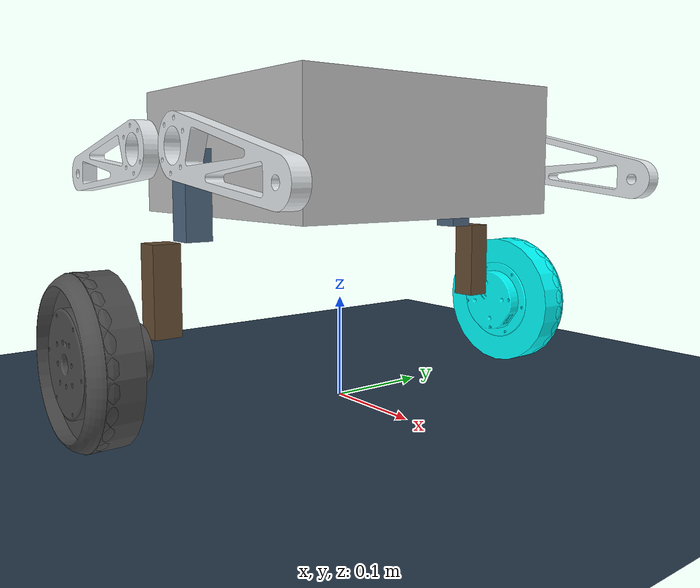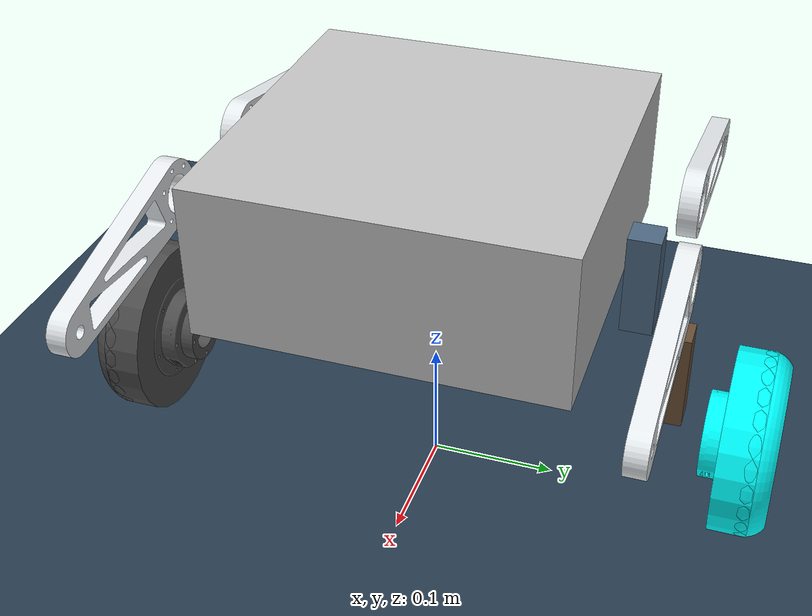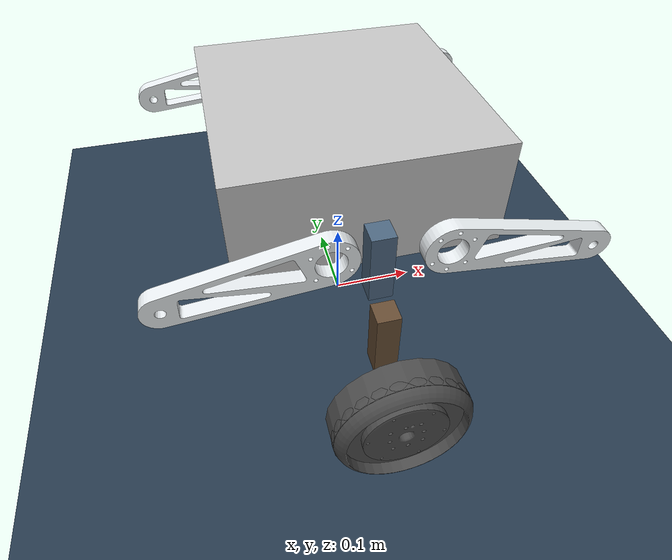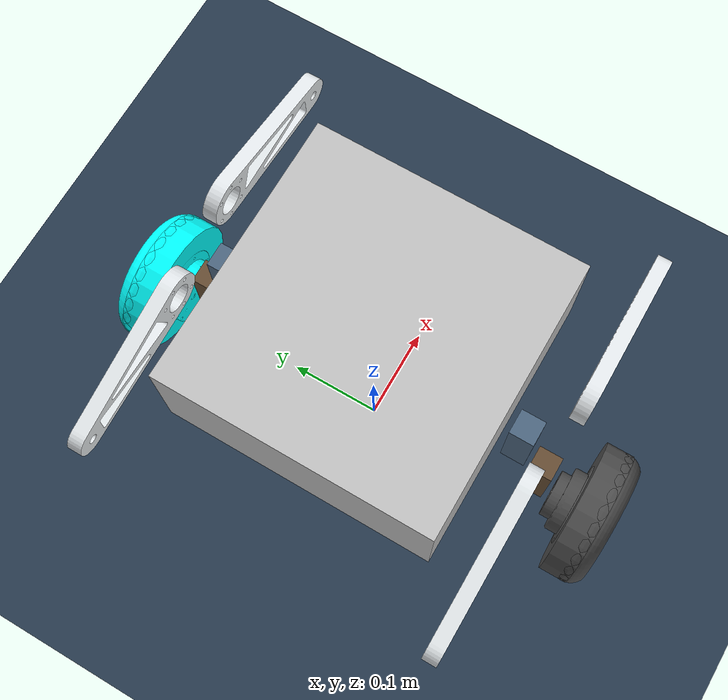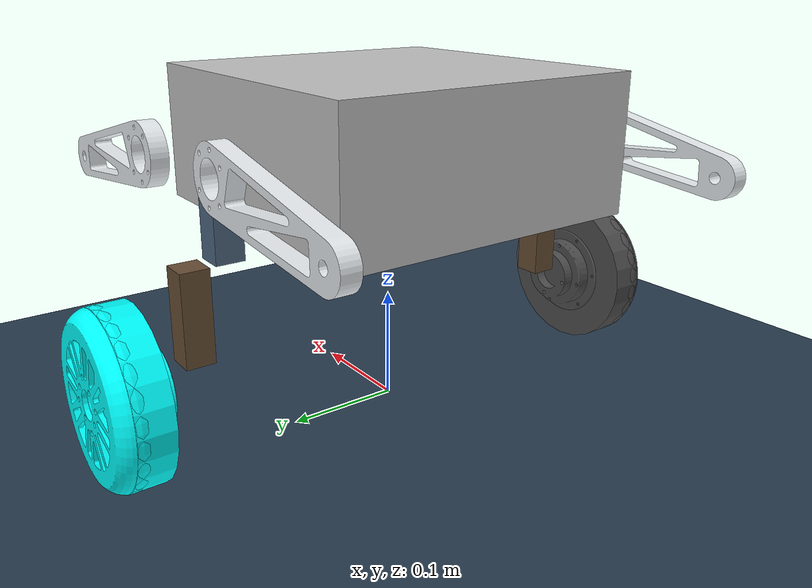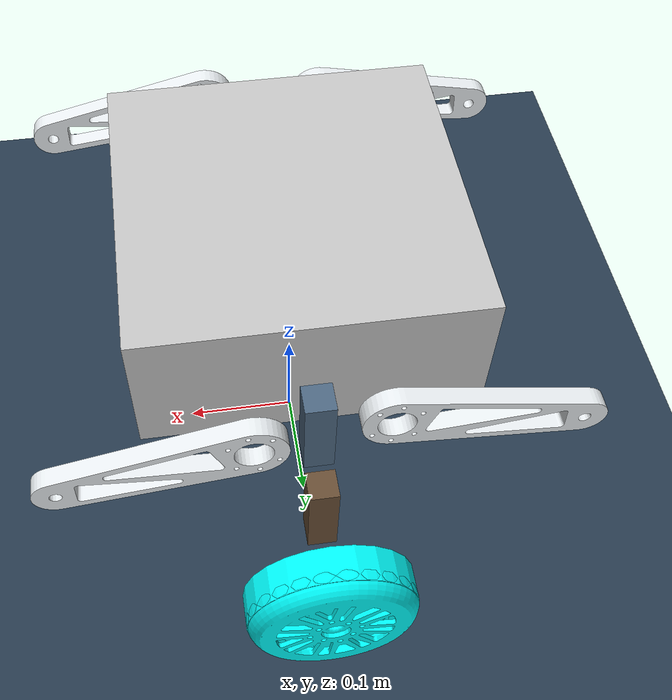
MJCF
<mujoco model="pi_12dof_release_v1">
	<compiler angle="radian" meshdir="../meshes/" eulerseq="zyx" />
	<option timestep="0.001" iterations="50" solver="PGS" gravity="0 0 -9.81">
	</option>
	<size njmax="500" nconmax="100" />
	<visual>
		<quality shadowsize="4096" />
		<map znear="0.05" />
	</visual>
	<default>
		<joint limited="true" />
		<motor ctrllimited="true" />
		<geom condim="4" contype="1" conaffinity="15" solref="0.001 2" friction="0.9 0.2 0.2" />
		<equality solref="0.001 2" />
		<default class="visualgeom">
			<geom material="visualgeom" condim="1" contype="0" conaffinity="0" />
		</default>
		<default class="visualgeom2">
			<geom material="visualgeom2" condim="1" contype="0" conaffinity="0" />
		</default>
		<default class="obstacle">
			<geom material="obstacle" condim="3" contype="1" conaffinity="15" />
		</default>
	</default>
	<asset>
		<texture type="skybox" builtin="gradient" rgb1="0.3 0.5 0.7" rgb2="0 0 0" width="512" height="512" />
		<texture name="texplane" type="2d" builtin="checker" rgb1=".2 .3 .4" rgb2=".1 0.15 0.2" width="512" height="512" mark="cross" markrgb=".8 .8 .8" />
		<texture name="texplane2" type="2d" builtin="checker" rgb1="1 0.3137 0.1843" rgb2="0.0 0.30196 0.38039" width="512" height="512" mark="cross" markrgb=".8 .8 .8" />
		<material name="matplane" reflectance="0." texture="texplane" texrepeat="1 1" texuniform="true" />
		<material name="matplane2" reflectance="0.1" texture="texplane2" texrepeat="1 1" texuniform="true" />
		<material name="obstacle" rgba="0.9 0.6 0.2 1" />
		<material name="visualgeom" rgba="0.5 0.9 0.2 1" />
		<material name="visualgeom2" rgba="0.5 0.9 0.2 1" />
		<mesh name="l_wheel_link" file="l_wheel_link.STL" />
		<mesh name="l_f_mt_link" file="l_f_mt_link.STL" />
		<mesh name="l_b_mt_link" file="l_b_mt_link.STL" />
		<mesh name="r_f_mt_link" file="r_f_mt_link.STL" />
		<mesh name="r_wheel_link" file="r_wheel_link.STL" />
		<mesh name="r_b_mt_link" file="r_b_mt_link.STL" />
		<hfield name="hf0" nrow="200" ncol="200" size="10 5 0.2 .1" />
	</asset>
	<worldbody>
		<light directional="true" diffuse=".4 .4 .4" specular="0.1 0.1 0.1" pos="0 0 5.0" dir="0 0 -1" castshadow="false" />
		<light directional="true" diffuse=".6 .6 .6" specular="0.2 0.2 0.2" pos="0 0 4" dir="0 0 -1" />
		<geom name="ground" type="plane" size="0 0 1" pos="0.001 0 0" quat="1 0 0 0" material="matplane" condim="1" conaffinity="15" />
		<body name="base_link" pos="0.0 0.0 0.245">
			<inertial pos="0.00242324 -5.699e-05 0.0403008" quat="0.695312 0.00968645 0.00943283 0.718581" mass="2.1609" diaginertia="0.00978249 0.00901239 0.00416199" />
			<geom size="0.14 0.14 0.06" type="box" contype="0" conaffinity="0" group="1" density="0" rgba="0.75294 0.75294 0.75294 1" />
			<geom size="0.14 0.14 0.06" type="box" rgba="0.75294 0.75294 0.75294 1" />
			<geom pos="0.054 0.2025 0" type="mesh" contype="0" conaffinity="0" group="1" density="0" rgba="0.89804 0.91765 0.92941 1" mesh="l_f_mt_link" />
			<geom pos="0.054 0.2025 0" type="mesh" rgba="0.89804 0.91765 0.92941 1" mesh="l_f_mt_link" />
			<geom pos="-0.054 0.2025 0" type="mesh" contype="0" conaffinity="0" group="1" density="0" rgba="0.89804 0.91765 0.92941 1" mesh="l_b_mt_link" />
			<geom pos="-0.054 0.2025 0" type="mesh" rgba="0.89804 0.91765 0.92941 1" mesh="l_b_mt_link" />
			<geom pos="0.054 -0.2025 0" type="mesh" contype="0" conaffinity="0" group="1" density="0" rgba="0.89804 0.91765 0.92941 1" mesh="r_f_mt_link" />
			<geom pos="0.054 -0.2025 0" type="mesh" rgba="0.89804 0.91765 0.92941 1" mesh="r_f_mt_link" />
			<geom pos="-0.054 -0.2025 0" type="mesh" contype="0" conaffinity="0" group="1" density="0" rgba="0.89804 0.91765 0.92941 1" mesh="r_b_mt_link" />
			<geom pos="-0.054 -0.2025 0" type="mesh" rgba="0.89804 0.91765 0.92941 1" mesh="r_b_mt_link" />
			<geom size="0.0005 0.0005 0.0005" type="box" contype="0" conaffinity="0" group="1" density="0" />
			<geom size="0.0005 0.0005 0.0005" type="box" />
			<joint type="slide" axis="1 0 0" limited="false" />
			<joint type="slide" axis="0 1 0" limited="false" />
			<joint type="slide" axis="0 0 1" limited="false" />
			<joint type="ball" limited="false" />
			<site name="imu" size="0.01" pos="0.0 0 0.0" />
			<body name="l_mt_link" pos="0 0.16 0">
				<inertial pos="0 0 0" quat="0.820473 0.339851 -0.17592 0.424708" mass="0.0001" diaginertia="1e-10 1e-10 1e-10" />
				<joint name="l_mt_joint" pos="0 0 0" axis="0 1 0" range="-0.8 0.8" />
				<geom size="0.0125 0.0125 0.04" pos="0 0 -0.04" type="box" contype="0" conaffinity="0" group="1" density="0" rgba="0.3 0.4 0.5 1" />
				<geom size="0.0125 0.0125 0.04" pos="0 0 -0.04" type="box" rgba="0.3 0.4 0.5 1" />
				<body name="l_p_link" pos="0 0 -0.08">
					<inertial pos="0 0 0" quat="0.820473 0.339851 -0.17592 0.424708" mass="0.0001" diaginertia="1e-10 1e-10 1e-10" />
					<joint name="l_p_joint" pos="0 0 0" axis="0 0 1" type="slide" range="-0.18 0.08" />
					<geom size="0.0125 0.0125 0.04" pos="0 0.03 -0.04" type="box" contype="0" conaffinity="0" group="1" density="0" rgba="0.4 0.3 0.2 1" />
					<geom size="0.0125 0.0125 0.04" pos="0 0.03 -0.04" type="box" rgba="0.4 0.3 0.2 1" />
					<body name="l_wheel_link" pos="0 0.1 -0.091525">
						<inertial pos="6.7739e-06 -0.003652 4.26e-06" quat="0.270602 0.653253 0.653298 0.270625" mass="0.43397" diaginertia="0.0010009 0.000539513 0.000539487" />
						<joint name="l_wheel_joint" pos="0 0 0" axis="0 1 0" range="-100000 100000" />
						<geom type="mesh" contype="0" conaffinity="0" group="1" density="0" rgba="0 1 1 1" mesh="l_wheel_link" />
						<geom size="0.0725 0.015" pos="0 -0.01 0" quat="0.707107 0.707107 0 0" type="cylinder" rgba="0 1 1 1" />
					</body>
				</body>
			</body>
			<body name="r_mt_link" pos="0 -0.16 0">
				<inertial pos="0 0 0" quat="0.820473 0.339851 -0.17592 0.424708" mass="0.0001" diaginertia="1e-10 1e-10 1e-10" />
				<joint name="r_mt_joint" pos="0 0 0" axis="0 1 0" range="-0.8 0.8" />
				<geom size="0.0125 0.0125 0.04" pos="0 0 -0.04" type="box" contype="0" conaffinity="0" group="1" density="0" rgba="0.3 0.4 0.5 1" />
				<geom size="0.0125 0.0125 0.04" pos="0 0 -0.04" type="box" rgba="0.3 0.4 0.5 1" />
				<body name="r_p_link" pos="0 0 -0.08">
					<inertial pos="0 0 0" quat="0.820473 0.339851 -0.17592 0.424708" mass="0.0001" diaginertia="1e-10 1e-10 1e-10" />
					<joint name="r_p_joint" pos="0 0 0" axis="0 0 1" type="slide" range="-0.18 0.08" />
					<geom size="0.0125 0.0125 0.04" pos="0 -0.03 -0.04" type="box" contype="0" conaffinity="0" group="1" density="0" rgba="0.4 0.3 0.2 1" />
					<geom size="0.0125 0.0125 0.04" pos="0 -0.03 -0.04" type="box" rgba="0.4 0.3 0.2 1" />
					<body name="r_wheel_link" pos="0 -0.1 -0.091525">
						<inertial pos="-2.3366e-06 0.0089279 -8.278e-06" quat="0.402437 0.58143 0.581444 0.402377" mass="0.40373" diaginertia="0.00081663 0.000440363 0.000440337" />
						<joint name="r_wheel_joint" pos="0 0 0" axis="0 1 0" range="-100000 100000" />
						<geom type="mesh" contype="0" conaffinity="0" group="1" density="0" rgba="0.29804 0.29804 0.29804 1" mesh="r_wheel_link" />
						<geom size="0.0725 0.015" pos="0 0.01 0" quat="0.707107 0.707107 0 0" type="cylinder" rgba="0.29804 0.29804 0.29804 1" />
					</body>
				</body>
			</body>
		</body>
	</worldbody>
	<actuator>
		<motor name="r_mt_joint" joint="r_mt_joint" gear="1" ctrllimited="true" ctrlrange="-200 200" />
		<motor name="r_p_joint" joint="r_p_joint" gear="1" ctrllimited="true" ctrlrange="-200 200" />
		<motor name="r_wheel_joint" joint="r_wheel_joint" gear="1" ctrllimited="true" ctrlrange="-200 200" />
		<motor name="l_mt_joint" joint="l_mt_joint" gear="1" ctrllimited="true" ctrlrange="-200 200" />
		<motor name="l_p_joint" joint="l_p_joint" gear="1" ctrllimited="true" ctrlrange="-200 200" />
		<motor name="l_wheel_joint" joint="l_wheel_joint" gear="1" ctrllimited="true" ctrlrange="-200 200" />
	</actuator>
	<sensor>
		<!-- Position sensors -->
		<actuatorpos name="r_mt_joint_p" actuator="r_mt_joint" user="13" />
		<actuatorpos name="r_p_joint_p" actuator="r_p_joint" user="13" />
		<actuatorpos name="r_wheel_joint_p" actuator="r_wheel_joint" user="13" />
		<actuatorpos name="l_mt_joint_p" actuator="l_mt_joint" user="13" />
		<actuatorpos name="l_p_joint_p" actuator="l_p_joint" user="13" />
		<actuatorpos name="l_wheel_joint_p" actuator="l_wheel_joint" user="13" />
		<!-- Velocity sensors -->
		<actuatorvel name="r_mt_joint_v" actuator="r_mt_joint" user="13" noise="1e-3" />
		<actuatorvel name="r_p_joint_v" actuator="r_p_joint" user="13" noise="1e-3" />
		<actuatorvel name="r_wheel_joint_v" actuator="r_wheel_joint" user="13" noise="1e-3" />
		<actuatorvel name="l_mt_joint_v" actuator="l_mt_joint" user="13" noise="1e-3" />
		<actuatorvel name="l_p_joint_v" actuator="l_p_joint" user="13" noise="1e-3" />
		<actuatorvel name="l_wheel_joint_v" actuator="l_wheel_joint" user="13" noise="1e-3" />
		<!-- Force sensors -->
		<actuatorfrc name="r_mt_joint_f" actuator="r_mt_joint" user="13" noise="1e-3" />
		<actuatorfrc name="r_p_joint_f" actuator="r_p_joint" user="13" noise="1e-3" />
		<actuatorfrc name="r_wheel_joint_f" actuator="r_wheel_joint" user="13" noise="1e-3" />
		<actuatorfrc name="l_mt_joint_f" actuator="l_mt_joint" user="13" noise="1e-3" />
		<actuatorfrc name="l_p_joint_f" actuator="l_p_joint" user="13" noise="1e-3" />
		<actuatorfrc name="l_wheel_joint_f" actuator="l_wheel_joint" user="13" noise="1e-3" />
		<framequat name="orientation" objtype="site" noise="0.001" objname="imu" />
		<framepos name="position" objtype="site" noise="0.001" objname="imu" />
		<gyro name="angular-velocity" site="imu" noise="0.005" cutoff="34.9" />
		<velocimeter name="linear-velocity" site="imu" noise="0.001" cutoff="30" />
		<accelerometer name="linear-acceleration" site="imu" noise="0.005" cutoff="157" />
		<magnetometer name="magnetometer" site="imu" />
	</sensor>
</mujoco>
